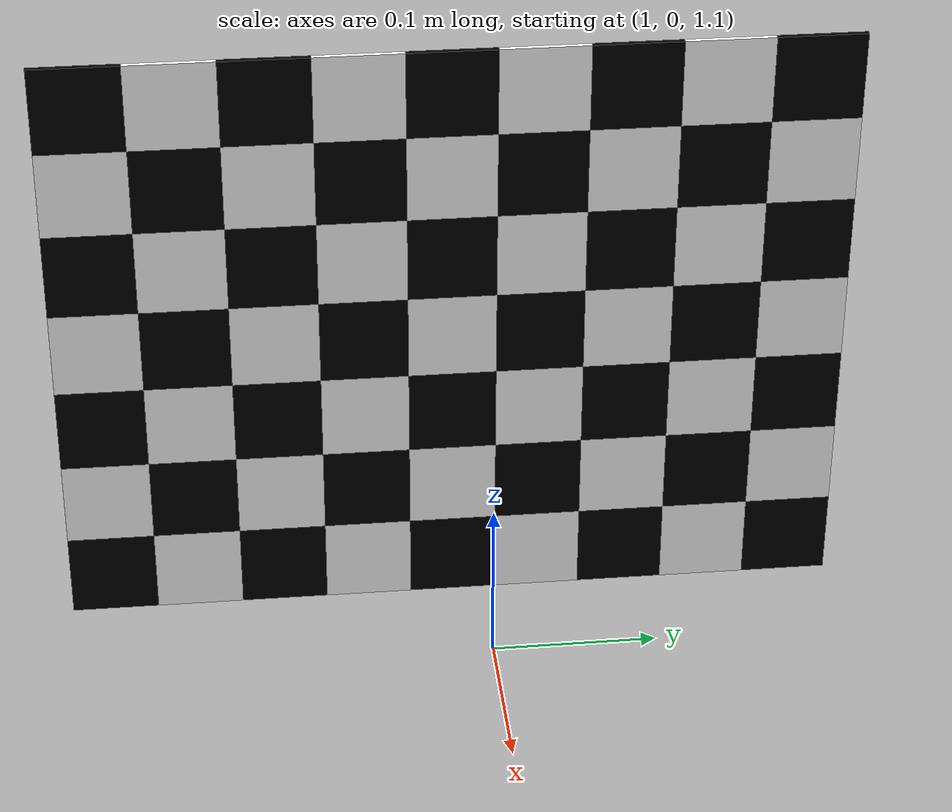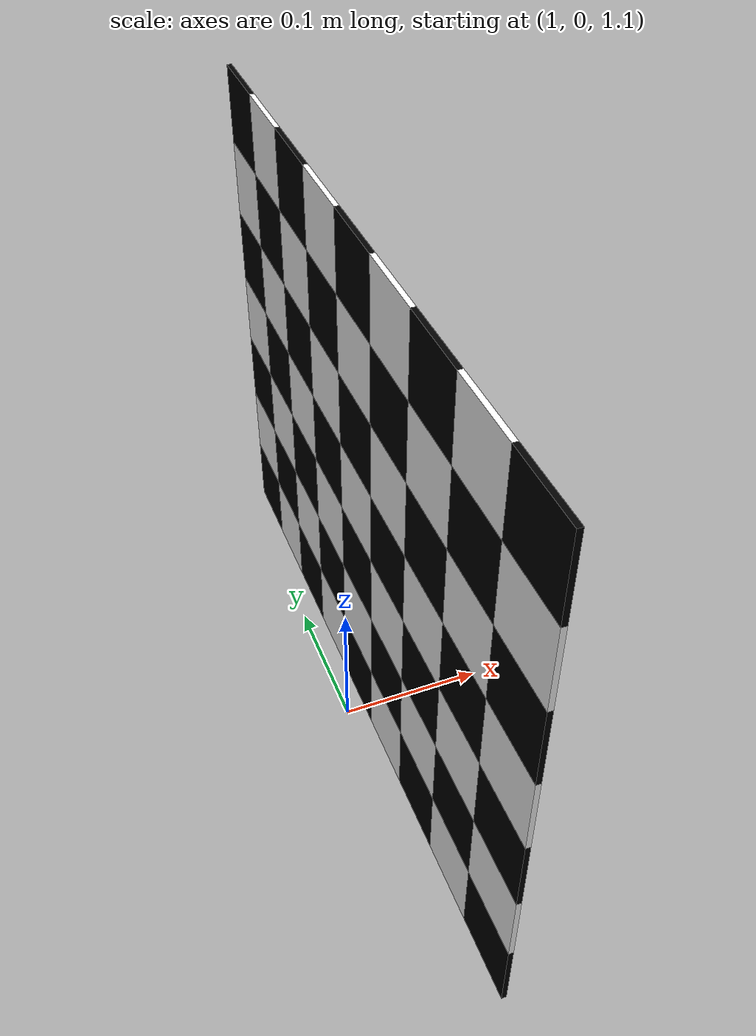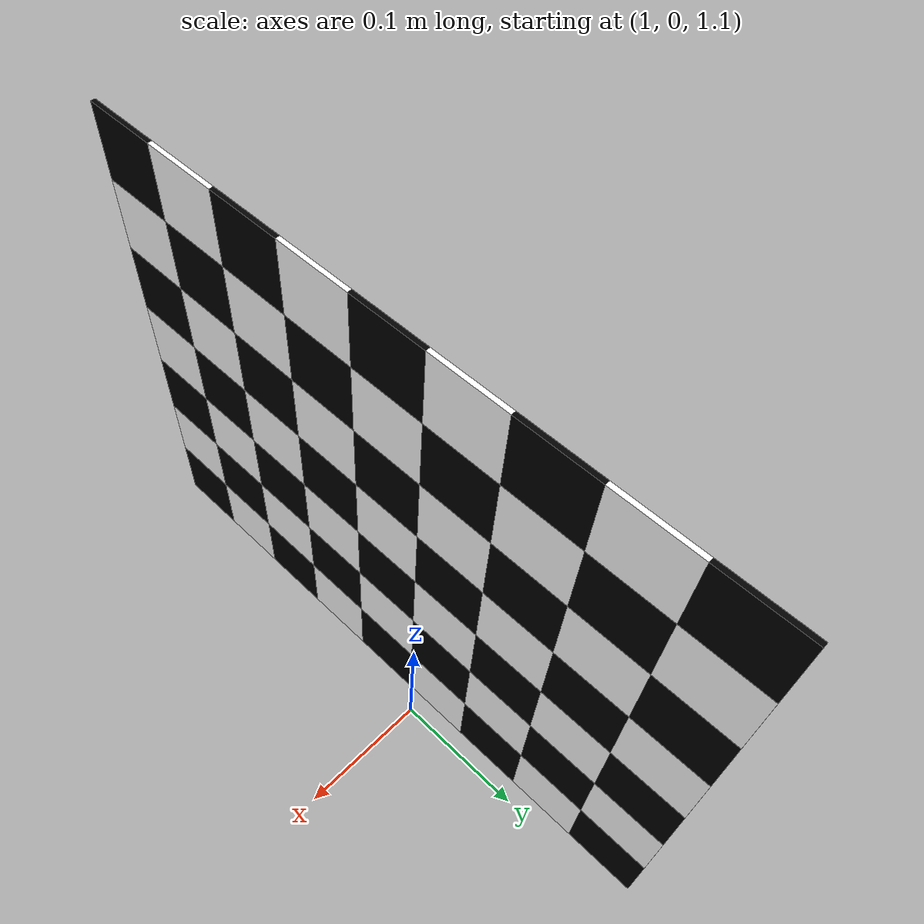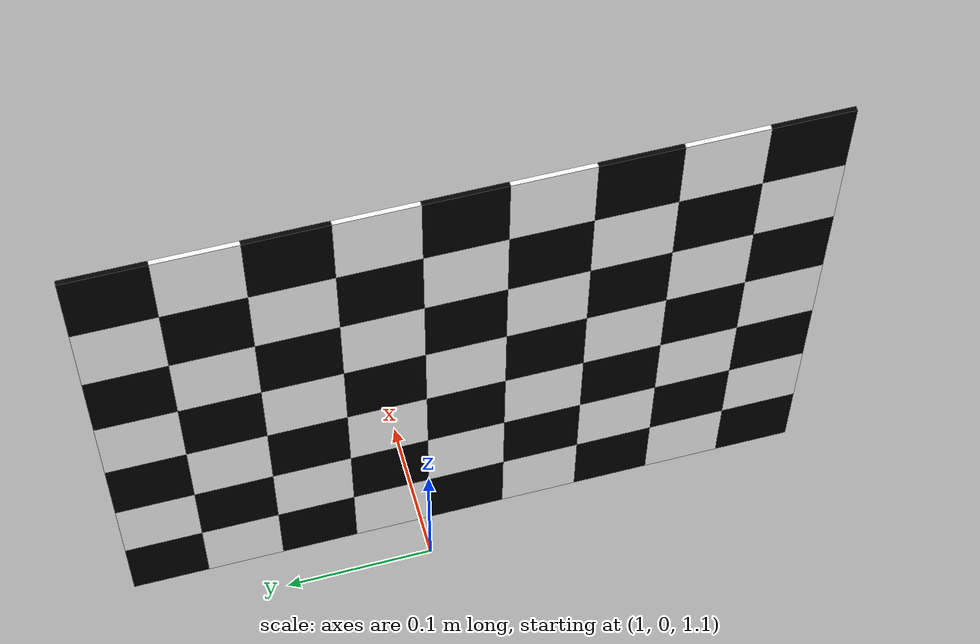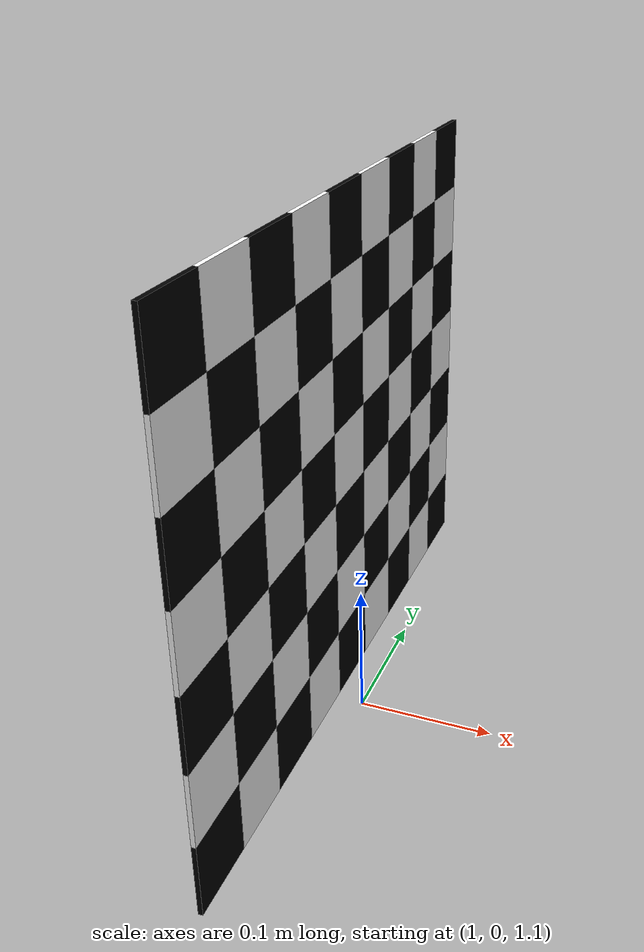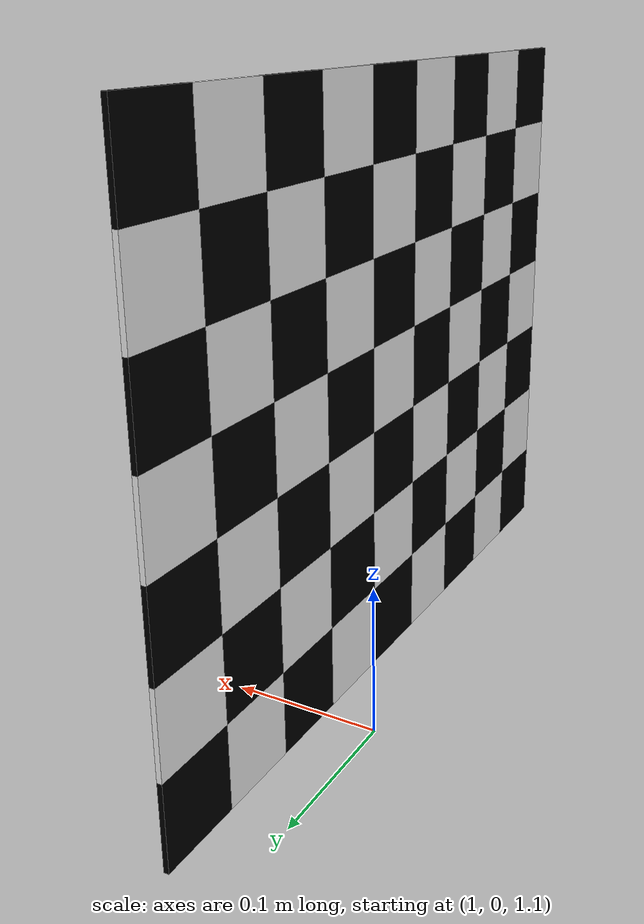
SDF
<?xml version="1.0"?>
<sdf version="1.4">
    <world name="default">
        <!-- A global light source -->
        <include>
            <uri>model://sun</uri>
            <pose>0 0 3 0 0 0</pose>
        </include>
        <!-- A ground plane -->
        <!-- Include chessboard_model -->
        <include>
            <uri>file://media/models/chessboard</uri>
        </include>
        <!-- A points light source -->
        <light type="point" name="point_left">
            <pose>0 2 2 0 0 0</pose>
            <specular>.1 .1 .1 1</specular>
            <attenuation>
                <range>90</range>
                <linear>0.2</linear>
                <constant>0.8</constant>
                <quadratic>0.01</quadratic>
            </attenuation>
            <cast_shadows>false</cast_shadows>
        </light>
        <light type="point" name="point_right">
            <pose>0 -2 2 0 0 0</pose>
            <specular>.1 .1 .1 1</specular>
            <attenuation>
                <range>90</range>
                <linear>0.2</linear>
                <constant>0.8</constant>
                <quadratic>0.01</quadratic>
            </attenuation>
            <cast_shadows>false</cast_shadows>
        </light>
        <light type="point" name="point_center">
            <pose>3 0 2 0 0 0</pose>
            <specular>.1 .1 .1 1</specular>
            <attenuation>
                <range>90</range>
                <linear>0.2</linear>
                <constant>0.8</constant>
                <quadratic>0.01</quadratic>
            </attenuation>
            <cast_shadows>false</cast_shadows>
        </light>
        <light type="directional" name="some_light">
            <pose frame=''>0 0 3 0 0 0</pose>
            <diffuse>0.9 0.9 0.9 1</diffuse>
            <specular>0.2 0.2 0.2 1</specular>
            <direction>0.5 0.1 -0.9</direction>
        </light>
    </world>
</sdf>

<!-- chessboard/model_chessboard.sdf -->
<sdf version="1.4">
    <model name='chessboard'>
        <static>true</static>
        <pose>1 0 1.4 1.57 0 1.57</pose>
        <link name='apriltag_body'>
            <visual name='block0'>
                <pose>-0.225 -0.225 0.001 0 0 0</pose>
                <geometry>
                    <box>
                        <size>0.05 0.05 0.003</size>
                    </box>
                </geometry>
                <material>
                    <ambient>0 0 0 1</ambient>
                    <diffuse>0 0 0 1</diffuse>
                    <specular>0 0 0 1</specular>
                </material>
            </visual>
            <visual name='block1'>
                <pose>-0.225 -0.175 0.001 0 0 0</pose>
                <geometry>
                    <box>
                        <size>0.05 0.05 0.003</size>
                    </box>
                </geometry>
                <material>
                    <ambient>1 1 1 1</ambient>
                    <diffuse>1 1 1 1</diffuse>
                    <specular>1 1 1 1</specular>
                </material>
            </visual>
            <visual name='block2'>
                <pose>-0.225 -0.125 0.001 0 0 0</pose>
                <geometry>
                    <box>
                        <size>0.05 0.05 0.003</size>
                    </box>
                </geometry>
                <material>
                    <ambient>0 0 0 1</ambient>
                    <diffuse>0 0 0 1</diffuse>
                    <specular>0 0 0 1</specular>
                </material>
            </visual>
            <visual name='block3'>
                <pose>-0.225 -0.075 0.001 0 0 0</pose>
                <geometry>
                    <box>
                        <size>0.05 0.05 0.003</size>
                    </box>
                </geometry>
                <material>
                    <ambient>1 1 1 1</ambient>
                    <diffuse>1 1 1 1</diffuse>
                    <specular>1 1 1 1</specular>
                </material>
            </visual>
            <visual name='block4'>
                <pose>-0.225 -0.025 0.001 0 0 0</pose>
                <geometry>
                    <box>
                        <size>0.05 0.05 0.003</size>
                    </box>
                </geometry>
                <material>
                    <ambient>0 0 0 1</ambient>
                    <diffuse>0 0 0 1</diffuse>
                    <specular>0 0 0 1</specular>
                </material>
            </visual>
            <visual name='block5'>
                <pose>-0.225 0.025 0.001 0 0 0</pose>
                <geometry>
                    <box>
                        <size>0.05 0.05 0.003</size>
                    </box>
                </geometry>
                <material>
                    <ambient>1 1 1 1</ambient>
                    <diffuse>1 1 1 1</diffuse>
                    <specular>1 1 1 1</specular>
                </material>
            </visual>
            <visual name='block6'>
                <pose>-0.225 0.075 0.001 0 0 0</pose>
                <geometry>
                    <box>
                        <size>0.05 0.05 0.003</size>
                    </box>
                </geometry>
                <material>
                    <ambient>0 0 0 1</ambient>
                    <diffuse>0 0 0 1</diffuse>
                    <specular>0 0 0 1</specular>
                </material>
            </visual>
            <visual name='block9'>
                <pose>-0.175 -0.225 0.001 0 0 0</pose>
                <geometry>
                    <box>
                        <size>0.05 0.05 0.003</size>
                    </box>
                </geometry>
                <material>
                    <ambient>1 1 1 1</ambient>
                    <diffuse>1 1 1 1</diffuse>
                    <specular>1 1 1 1</specular>
                </material>
            </visual>
            <visual name='block10'>
                <pose>-0.175 -0.175 0.001 0 0 0</pose>
                <geometry>
                    <box>
                        <size>0.05 0.05 0.003</size>
                    </box>
                </geometry>
                <material>
                    <ambient>0 0 0 1</ambient>
                    <diffuse>0 0 0 1</diffuse>
                    <specular>0 0 0 1</specular>
                </material>
            </visual>
            <visual name='block11'>
                <pose>-0.175 -0.125 0.001 0 0 0</pose>
                <geometry>
                    <box>
                        <size>0.05 0.05 0.003</size>
                    </box>
                </geometry>
                <material>
                    <ambient>1 1 1 1</ambient>
                    <diffuse>1 1 1 1</diffuse>
                    <specular>1 1 1 1</specular>
                </material>
            </visual>
            <visual name='block12'>
                <pose>-0.175 -0.075 0.001 0 0 0</pose>
                <geometry>
                    <box>
                        <size>0.05 0.05 0.003</size>
                    </box>
                </geometry>
                <material>
                    <ambient>0 0 0 1</ambient>
                    <diffuse>0 0 0 1</diffuse>
                    <specular>0 0 0 1</specular>
                </material>
            </visual>
            <visual name='block13'>
                <pose>-0.175 -0.025 0.001 0 0 0</pose>
                <geometry>
                    <box>
                        <size>0.05 0.05 0.003</size>
                    </box>
                </geometry>
                <material>
                    <ambient>1 1 1 1</ambient>
                    <diffuse>1 1 1 1</diffuse>
                    <specular>1 1 1 1</specular>
                </material>
            </visual>
            <visual name='block14'>
                <pose>-0.175 0.025 0.001 0 0 0</pose>
                <geometry>
                    <box>
                        <size>0.05 0.05 0.003</size>
                    </box>
                </geometry>
                <material>
                    <ambient>0 0 0 1</ambient>
                    <diffuse>0 0 0 1</diffuse>
                    <specular>0 0 0 1</specular>
                </material>
            </visual>
            <visual name='block15'>
                <pose>-0.175 0.075 0.001 0 0 0</pose>
                <geometry>
                    <box>
                        <size>0.05 0.05 0.003</size>
                    </box>
                </geometry>
                <material>
                    <ambient>1 1 1 1</ambient>
                    <diffuse>1 1 1 1</diffuse>
                    <specular>1 1 1 1</specular>
                </material>
            </visual>
            <visual name='block18'>
                <pose>-0.125 -0.225 0.001 0 0 0</pose>
                <geometry>
                    <box>
                        <size>0.05 0.05 0.003</size>
                    </box>
                </geometry>
                <material>
                    <ambient>0 0 0 1</ambient>
                    <diffuse>0 0 0 1</diffuse>
                    <specular>0 0 0 1</specular>
                </material>
            </visual>
            <visual name='block19'>
                <pose>-0.125 -0.175 0.001 0 0 0</pose>
                <geometry>
                    <box>
                        <size>0.05 0.05 0.003</size>
                    </box>
                </geometry>
                <material>
                    <ambient>1 1 1 1</ambient>
                    <diffuse>1 1 1 1</diffuse>
                    <specular>1 1 1 1</specular>
                </material>
            </visual>
            <visual name='block20'>
                <pose>-0.125 -0.125 0.001 0 0 0</pose>
                <geometry>
                    <box>
                        <size>0.05 0.05 0.003</size>
                    </box>
                </geometry>
                <material>
                    <ambient>0 0 0 1</ambient>
                    <diffuse>0 0 0 1</diffuse>
                    <specular>0 0 0 1</specular>
                </material>
            </visual>
            <visual name='block21'>
                <pose>-0.125 -0.075 0.001 0 0 0</pose>
                <geometry>
                    <box>
                        <size>0.05 0.05 0.003</size>
                    </box>
                </geometry>
                <material>
                    <ambient>1 1 1 1</ambient>
                    <diffuse>1 1 1 1</diffuse>
                    <specular>1 1 1 1</specular>
                </material>
            </visual>
            <visual name='block22'>
                <pose>-0.125 -0.025 0.001 0 0 0</pose>
                <geometry>
                    <box>
                        <size>0.05 0.05 0.003</size>
                    </box>
                </geometry>
                <material>
                    <ambient>0 0 0 1</ambient>
                    <diffuse>0 0 0 1</diffuse>
                    <specular>0 0 0 1</specular>
                </material>
            </visual>
            <visual name='block23'>
                <pose>-0.125 0.025 0.001 0 0 0</pose>
                <geometry>
                    <box>
                        <size>0.05 0.05 0.003</size>
                    </box>
                </geometry>
                <material>
                    <ambient>1 1 1 1</ambient>
                    <diffuse>1 1 1 1</diffuse>
                    <specular>1 1 1 1</specular>
                </material>
            </visual>
            <visual name='block24'>
                <pose>-0.125 0.075 0.001 0 0 0</pose>
                <geometry>
                    <box>
                        <size>0.05 0.05 0.003</size>
                    </box>
                </geometry>
                <material>
                    <ambient>0 0 0 1</ambient>
                    <diffuse>0 0 0 1</diffuse>
                    <specular>0 0 0 1</specular>
                </material>
            </visual>
            <visual name='block27'>
                <pose>-0.075 -0.225 0.001 0 0 0</pose>
                <geometry>
                    <box>
                        <size>0.05 0.05 0.003</size>
                    </box>
                </geometry>
                <material>
                    <ambient>1 1 1 1</ambient>
                    <diffuse>1 1 1 1</diffuse>
                    <specular>1 1 1 1</specular>
                </material>
            </visual>
            <visual name='block28'>
                <pose>-0.075 -0.175 0.001 0 0 0</pose>
                <geometry>
                    <box>
                        <size>0.05 0.05 0.003</size>
                    </box>
                </geometry>
                <material>
                    <ambient>0 0 0 1</ambient>
                    <diffuse>0 0 0 1</diffuse>
                    <specular>0 0 0 1</specular>
                </material>
            </visual>
            <visual name='block29'>
                <pose>-0.075 -0.125 0.001 0 0 0</pose>
                <geometry>
                    <box>
                        <size>0.05 0.05 0.003</size>
                    </box>
                </geometry>
                <material>
                    <ambient>1 1 1 1</ambient>
                    <diffuse>1 1 1 1</diffuse>
                    <specular>1 1 1 1</specular>
                </material>
            </visual>
            <visual name='block30'>
                <pose>-0.075 -0.075 0.001 0 0 0</pose>
                <geometry>
                    <box>
                        <size>0.05 0.05 0.003</size>
                    </box>
                </geometry>
                <material>
                    <ambient>0 0 0 1</ambient>
                    <diffuse>0 0 0 1</diffuse>
                    <specular>0 0 0 1</specular>
                </material>
            </visual>
            <visual name='block31'>
                <pose>-0.075 -0.025 0.001 0 0 0</pose>
                <geometry>
                    <box>
                        <size>0.05 0.05 0.003</size>
                    </box>
                </geometry>
                <material>
                    <ambient>1 1 1 1</ambient>
                    <diffuse>1 1 1 1</diffuse>
                    <specular>1 1 1 1</specular>
                </material>
            </visual>
            <visual name='block32'>
                <pose>-0.075 0.025 0.001 0 0 0</pose>
                <geometry>
                    <box>
                        <size>0.05 0.05 0.003</size>
                    </box>
                </geometry>
                <material>
                    <ambient>0 0 0 1</ambient>
                    <diffuse>0 0 0 1</diffuse>
                    <specular>0 0 0 1</specular>
                </material>
            </visual>
            <visual name='block33'>
                <pose>-0.075 0.075 0.001 0 0 0</pose>
                <geometry>
                    <box>
                        <size>0.05 0.05 0.003</size>
                    </box>
                </geometry>
                <material>
                    <ambient>1 1 1 1</ambient>
                    <diffuse>1 1 1 1</diffuse>
                    <specular>1 1 1 1</specular>
                </material>
            </visual>
            <visual name='block36'>
                <pose>-0.025 -0.225 0.001 0 0 0</pose>
                <geometry>
                    <box>
                        <size>0.05 0.05 0.003</size>
                    </box>
                </geometry>
                <material>
                    <ambient>0 0 0 1</ambient>
                    <diffuse>0 0 0 1</diffuse>
                    <specular>0 0 0 1</specular>
                </material>
            </visual>
            <visual name='block37'>
                <pose>-0.025 -0.175 0.001 0 0 0</pose>
                <geometry>
                    <box>
                        <size>0.05 0.05 0.003</size>
                    </box>
                </geometry>
                <material>
                    <ambient>1 1 1 1</ambient>
                    <diffuse>1 1 1 1</diffuse>
                    <specular>1 1 1 1</specular>
                </material>
            </visual>
            <visual name='block38'>
                <pose>-0.025 -0.125 0.001 0 0 0</pose>
                <geometry>
                    <box>
                        <size>0.05 0.05 0.003</size>
                    </box>
                </geometry>
                <material>
                    <ambient>0 0 0 1</ambient>
                    <diffuse>0 0 0 1</diffuse>
                    <specular>0 0 0 1</specular>
                </material>
            </visual>
            <visual name='block39'>
                <pose>-0.025 -0.075 0.001 0 0 0</pose>
                <geometry>
                    <box>
                        <size>0.05 0.05 0.003</size>
                    </box>
                </geometry>
                <material>
                    <ambient>1 1 1 1</ambient>
                    <diffuse>1 1 1 1</diffuse>
                    <specular>1 1 1 1</specular>
                </material>
            </visual>
            <visual name='block40'>
                <pose>-0.025 -0.025 0.001 0 0 0</pose>
                <geometry>
                    <box>
                        <size>0.05 0.05 0.003</size>
                    </box>
                </geometry>
                <material>
                    <ambient>0 0 0 1</ambient>
                    <diffuse>0 0 0 1</diffuse>
                    <specular>0 0 0 1</specular>
                </material>
            </visual>
            <visual name='block41'>
                <pose>-0.025 0.025 0.001 0 0 0</pose>
                <geometry>
                    <box>
                        <size>0.05 0.05 0.003</size>
                    </box>
                </geometry>
                <material>
                    <ambient>1 1 1 1</ambient>
                    <diffuse>1 1 1 1</diffuse>
                    <specular>1 1 1 1</specular>
                </material>
            </visual>
            <visual name='block42'>
                <pose>-0.025 0.075 0.001 0 0 0</pose>
                <geometry>
                    <box>
                        <size>0.05 0.05 0.003</size>
                    </box>
                </geometry>
                <material>
                    <ambient>0 0 0 1</ambient>
                    <diffuse>0 0 0 1</diffuse>
                    <specular>0 0 0 1</specular>
                </material>
            </visual>
            <visual name='block45'>
                <pose>0.025 -0.225 0.001 0 0 0</pose>
                <geometry>
                    <box>
                        <size>0.05 0.05 0.003</size>
                    </box>
                </geometry>
                <material>
                    <ambient>1 1 1 1</ambient>
                    <diffuse>1 1 1 1</diffuse>
                    <specular>1 1 1 1</specular>
                </material>
            </visual>
            <visual name='block46'>
                <pose>0.025 -0.175 0.001 0 0 0</pose>
                <geometry>
                    <box>
                        <size>0.05 0.05 0.003</size>
                    </box>
                </geometry>
                <material>
                    <ambient>0 0 0 1</ambient>
                    <diffuse>0 0 0 1</diffuse>
                    <specular>0 0 0 1</specular>
                </material>
            </visual>
            <visual name='block47'>
                <pose>0.025 -0.125 0.001 0 0 0</pose>
                <geometry>
                    <box>
                        <size>0.05 0.05 0.003</size>
                    </box>
                </geometry>
                <material>
                    <ambient>1 1 1 1</ambient>
                    <diffuse>1 1 1 1</diffuse>
                    <specular>1 1 1 1</specular>
                </material>
            </visual>
            <visual name='block48'>
                <pose>0.025 -0.075 0.001 0 0 0</pose>
                <geometry>
                    <box>
                        <size>0.05 0.05 0.003</size>
                    </box>
                </geometry>
                <material>
                    <ambient>0 0 0 1</ambient>
                    <diffuse>0 0 0 1</diffuse>
                    <specular>0 0 0 1</specular>
                </material>
            </visual>
            <visual name='block49'>
                <pose>0.025 -0.025 0.001 0 0 0</pose>
                <geometry>
                    <box>
                        <size>0.05 0.05 0.003</size>
                    </box>
                </geometry>
                <material>
                    <ambient>1 1 1 1</ambient>
                    <diffuse>1 1 1 1</diffuse>
                    <specular>1 1 1 1</specular>
                </material>
            </visual>
            <visual name='block50'>
                <pose>0.025 0.025 0.001 0 0 0</pose>
                <geometry>
                    <box>
                        <size>0.05 0.05 0.003</size>
                    </box>
                </geometry>
                <material>
                    <ambient>0 0 0 1</ambient>
                    <diffuse>0 0 0 1</diffuse>
                    <specular>0 0 0 1</specular>
                </material>
            </visual>
            <visual name='block51'>
                <pose>0.025 0.075 0.001 0 0 0</pose>
                <geometry>
                    <box>
                        <size>0.05 0.05 0.003</size>
                    </box>
                </geometry>
                <material>
                    <ambient>1 1 1 1</ambient>
                    <diffuse>1 1 1 1</diffuse>
                    <specular>1 1 1 1</specular>
                </material>
            </visual>
            <visual name='block54'>
                <pose>0.075 -0.225 0.001 0 0 0</pose>
                <geometry>
                    <box>
                        <size>0.05 0.05 0.003</size>
                    </box>
                </geometry>
                <material>
                    <ambient>0 0 0 1</ambient>
                    <diffuse>0 0 0 1</diffuse>
                    <specular>0 0 0 1</specular>
                </material>
            </visual>
            <visual name='block55'>
                <pose>0.075 -0.175 0.001 0 0 0</pose>
                <geometry>
                    <box>
                        <size>0.05 0.05 0.003</size>
                    </box>
                </geometry>
                <material>
                    <ambient>1 1 1 1</ambient>
                    <diffuse>1 1 1 1</diffuse>
                    <specular>1 1 1 1</specular>
                </material>
            </visual>
            <visual name='block56'>
                <pose>0.075 -0.125 0.001 0 0 0</pose>
                <geometry>
                    <box>
                        <size>0.05 0.05 0.003</size>
                    </box>
                </geometry>
                <material>
                    <ambient>0 0 0 1</ambient>
                    <diffuse>0 0 0 1</diffuse>
                    <specular>0 0 0 1</specular>
                </material>
            </visual>
            <visual name='block57'>
                <pose>0.075 -0.075 0.001 0 0 0</pose>
                <geometry>
                    <box>
                        <size>0.05 0.05 0.003</size>
                    </box>
                </geometry>
                <material>
                    <ambient>1 1 1 1</ambient>
                    <diffuse>1 1 1 1</diffuse>
                    <specular>1 1 1 1</specular>
                </material>
            </visual>
            <visual name='block58'>
                <pose>0.075 -0.025 0.001 0 0 0</pose>
                <geometry>
                    <box>
                        <size>0.05 0.05 0.003</size>
                    </box>
                </geometry>
                <material>
                    <ambient>0 0 0 1</ambient>
                    <diffuse>0 0 0 1</diffuse>
                    <specular>0 0 0 1</specular>
                </material>
            </visual>
            <visual name='block59'>
                <pose>0.075 0.025 0.001 0 0 0</pose>
                <geometry>
                    <box>
                        <size>0.05 0.05 0.003</size>
                    </box>
                </geometry>
                <material>
                    <ambient>1 1 1 1</ambient>
                    <diffuse>1 1 1 1</diffuse>
                    <specular>1 1 1 1</specular>
                </material>
            </visual>
            <visual name='block60'>
                <pose>0.075 0.075 0.001 0 0 0</pose>
                <geometry>
                    <box>
                        <size>0.05 0.05 0.003</size>
                    </box>
                </geometry>
                <material>
                    <ambient>0 0 0 1</ambient>
                    <diffuse>0 0 0 1</diffuse>
                    <specular>0 0 0 1</specular>
                </material>
            </visual>
            <visual name='block63'>
                <pose>0.125 -0.225 0.001 0 0 0</pose>
                <geometry>
                    <box>
                        <size>0.05 0.05 0.003</size>
                    </box>
                </geometry>
                <material>
                    <ambient>1 1 1 1</ambient>
                    <diffuse>1 1 1 1</diffuse>
                    <specular>1 1 1 1</specular>
                </material>
            </visual>
            <visual name='block64'>
                <pose>0.125 -0.175 0.001 0 0 0</pose>
                <geometry>
                    <box>
                        <size>0.05 0.05 0.003</size>
                    </box>
                </geometry>
                <material>
                    <ambient>0 0 0 1</ambient>
                    <diffuse>0 0 0 1</diffuse>
                    <specular>0 0 0 1</specular>
                </material>
            </visual>
            <visual name='block65'>
                <pose>0.125 -0.125 0.001 0 0 0</pose>
                <geometry>
                    <box>
                        <size>0.05 0.05 0.003</size>
                    </box>
                </geometry>
                <material>
                    <ambient>1 1 1 1</ambient>
                    <diffuse>1 1 1 1</diffuse>
                    <specular>1 1 1 1</specular>
                </material>
            </visual>
            <visual name='block66'>
                <pose>0.125 -0.075 0.001 0 0 0</pose>
                <geometry>
                    <box>
                        <size>0.05 0.05 0.003</size>
                    </box>
                </geometry>
                <material>
                    <ambient>0 0 0 1</ambient>
                    <diffuse>0 0 0 1</diffuse>
                    <specular>0 0 0 1</specular>
                </material>
            </visual>
            <visual name='block67'>
                <pose>0.125 -0.025 0.001 0 0 0</pose>
                <geometry>
                    <box>
                        <size>0.05 0.05 0.003</size>
                    </box>
                </geometry>
                <material>
                    <ambient>1 1 1 1</ambient>
                    <diffuse>1 1 1 1</diffuse>
                    <specular>1 1 1 1</specular>
                </material>
            </visual>
            <visual name='block68'>
                <pose>0.125 0.025 0.001 0 0 0</pose>
                <geometry>
                    <box>
                        <size>0.05 0.05 0.003</size>
                    </box>
                </geometry>
                <material>
                    <ambient>0 0 0 1</ambient>
                    <diffuse>0 0 0 1</diffuse>
                    <specular>0 0 0 1</specular>
                </material>
            </visual>
            <visual name='block69'>
                <pose>0.125 0.075 0.001 0 0 0</pose>
                <geometry>
                    <box>
                        <size>0.05 0.05 0.003</size>
                    </box>
                </geometry>
                <material>
                    <ambient>1 1 1 1</ambient>
                    <diffuse>1 1 1 1</diffuse>
                    <specular>1 1 1 1</specular>
                </material>
            </visual>
            <visual name='block72'>
                <pose>0.175 -0.225 0.001 0 0 0</pose>
                <geometry>
                    <box>
                        <size>0.05 0.05 0.003</size>
                    </box>
                </geometry>
                <material>
                    <ambient>0 0 0 1</ambient>
                    <diffuse>0 0 0 1</diffuse>
                    <specular>0 0 0 1</specular>
                </material>
            </visual>
            <visual name='block73'>
                <pose>0.175 -0.175 0.001 0 0 0</pose>
                <geometry>
                    <box>
                        <size>0.05 0.05 0.003</size>
                    </box>
                </geometry>
                <material>
                    <ambient>1 1 1 1</ambient>
                    <diffuse>1 1 1 1</diffuse>
                    <specular>1 1 1 1</specular>
                </material>
            </visual>
            <visual name='block74'>
                <pose>0.175 -0.125 0.001 0 0 0</pose>
                <geometry>
                    <box>
                        <size>0.05 0.05 0.003</size>
                    </box>
                </geometry>
                <material>
                    <ambient>0 0 0 1</ambient>
                    <diffuse>0 0 0 1</diffuse>
                    <specular>0 0 0 1</specular>
                </material>
            </visual>
            <visual name='block75'>
                <pose>0.175 -0.075 0.001 0 0 0</pose>
                <geometry>
                    <box>
                        <size>0.05 0.05 0.003</size>
                    </box>
                </geometry>
                <material>
                    <ambient>1 1 1 1</ambient>
                    <diffuse>1 1 1 1</diffuse>
                    <specular>1 1 1 1</specular>
                </material>
            </visual>
            <visual name='block76'>
                <pose>0.175 -0.025 0.001 0 0 0</pose>
                <geometry>
                    <box>
                        <size>0.05 0.05 0.003</size>
                    </box>
                </geometry>
                <material>
                    <ambient>0 0 0 1</ambient>
                    <diffuse>0 0 0 1</diffuse>
                    <specular>0 0 0 1</specular>
                </material>
            </visual>
            <visual name='block77'>
                <pose>0.175 0.025 0.001 0 0 0</pose>
                <geometry>
                    <box>
                        <size>0.05 0.05 0.003</size>
                    </box>
                </geometry>
                <material>
                    <ambient>1 1 1 1</ambient>
                    <diffuse>1 1 1 1</diffuse>
                    <specular>1 1 1 1</specular>
                </material>
            </visual>
            <visual name='block78'>
                <pose>0.175 0.075 0.001 0 0 0</pose>
                <geometry>
                    <box>
                        <size>0.05 0.05 0.003</size>
                    </box>
                </geometry>
                <material>
                    <ambient>0 0 0 1</ambient>
                    <diffuse>0 0 0 1</diffuse>
                    <specular>0 0 0 1</specular>
                </material>
            </visual>
        </link>
    </model>
</sdf>
